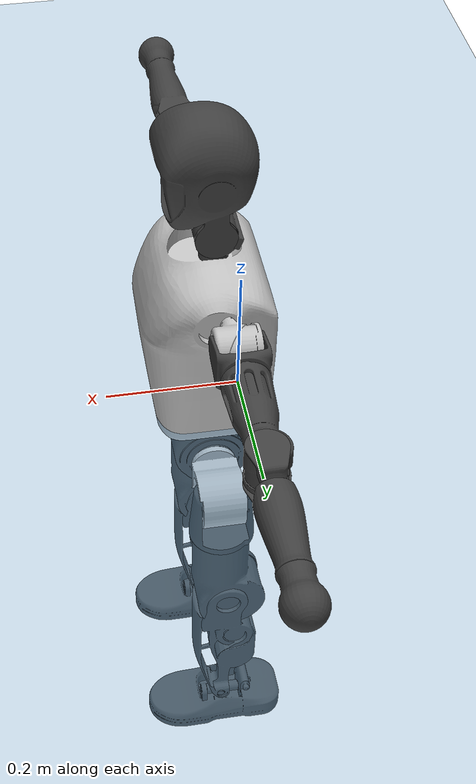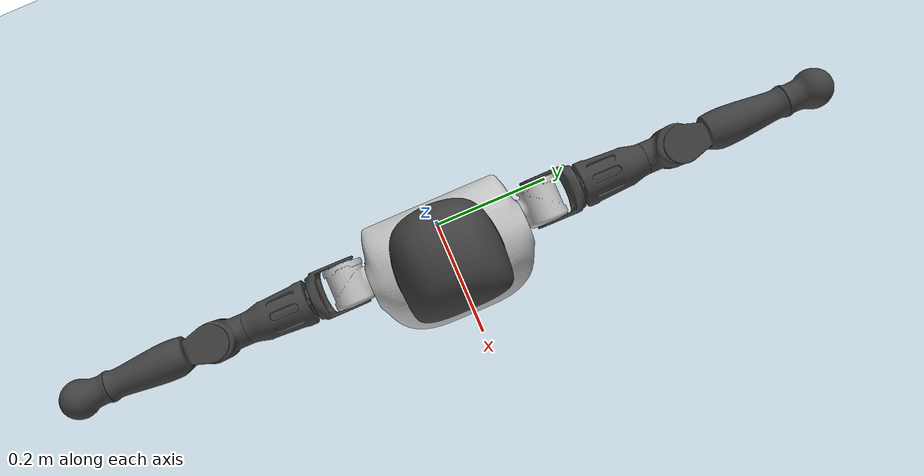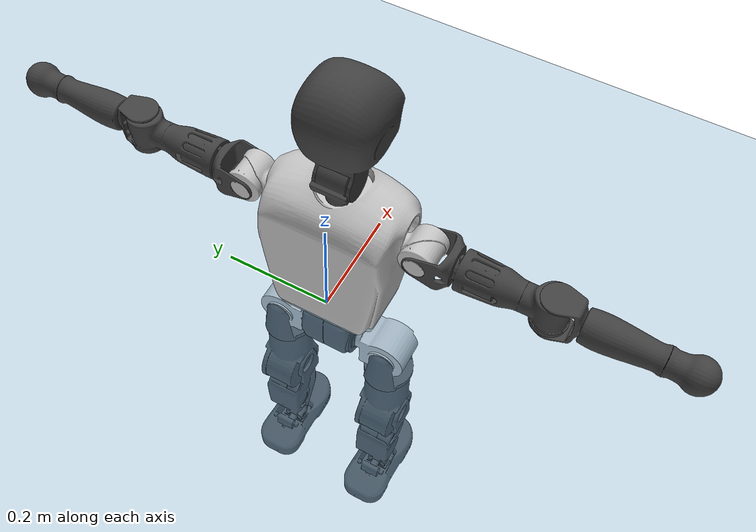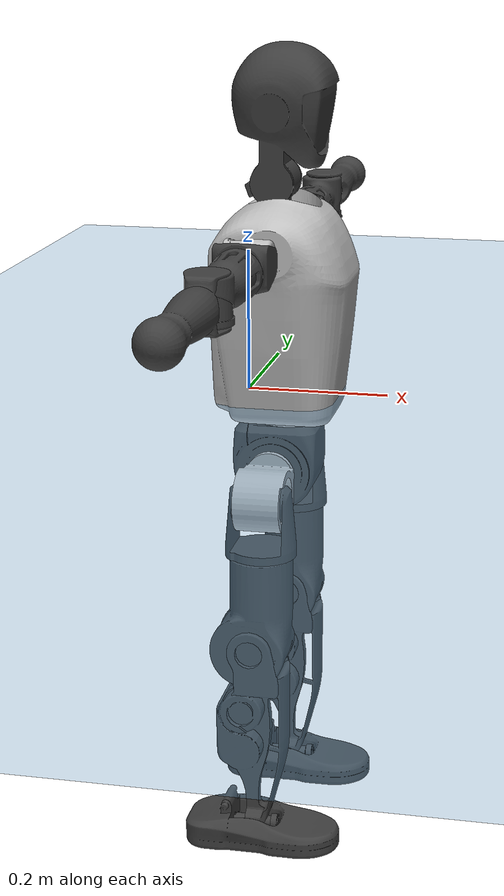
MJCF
<mujoco model="T1">
  <compiler angle="radian" assetdir="assets" balanceinertia="true" inertiafromgeom="false"/>

  <option timestep="0.005" density="1.2" viscosity="2e-05"/>

  <size nkey="1"/>

  <visual>
    <quality shadowsize="8192"/>
    <map shadowclip="0.5"/>
  </visual>

  <default>
    <default class="/">
      <joint armature="0.01" damping="0.01" frictionloss="0.1"/>
      <geom contype="0" conaffinity="0" group="1" solref="-1000 -80"/>
      <site size="0.01 0.005 0.005" group="5"/>
      <general forcelimited="true" biastype="affine" gainprm="25" biasprm="0 -25 -0.6"/>
      <default class="t1">
        <geom rgba="0.25 0.25 0.25 1"/>
        <default class="visual">
          <geom type="mesh" group="2"/>
        </default>
        <default class="collision">
          <geom group="3"/>
        </default>
        <default class="foot">
          <geom size="0.1115 0.05 0.015" type="box" condim="6" group="4" priority="1" solimp="0.015 1 0.015"/>
        </default>
        <default class="reward_collision_sphere">
          <geom group="5" rgba="1 0 0 1"/>
        </default>
      </default>
    </default>
  </default>

  <asset>
    <texture type="skybox" colorspace="auto" name="//unnamed_texture_0" builtin="gradient" rgb1="0.95 0.95 0.95" rgb2="0.95 0.95 0.95" width="100" height="600"/>
    <texture type="2d" colorspace="auto" name="texplane" builtin="checker" rgb1="0.345 0.575 0.748" rgb2="0.345 0.575 0.748" markrgb="1 1 1" width="512" height="512"/>
    <material name="MatPlane" class="/" texture="texplane" texuniform="true" texrepeat="2 2" specular="0.9"/>
    <mesh name="Trunk" class="/" file="Trunk.stl"/>
    <mesh name="H1" class="/" file="H1.stl"/>
    <mesh name="H2" class="/" file="H2.stl"/>
    <mesh name="AL1" class="/" file="AL1.stl"/>
    <mesh name="AL2" class="/" file="AL2.stl"/>
    <mesh name="AL3" class="/" file="AL3.stl"/>
    <mesh name="left_hand_link" class="/" file="left_hand_link.stl"/>
    <mesh name="AR1" class="/" file="AR1.stl"/>
    <mesh name="AR2" class="/" file="AR2.stl"/>
    <mesh name="AR3" class="/" file="AR3.stl"/>
    <mesh name="right_hand_link" class="/" file="right_hand_link.stl"/>
    <mesh name="Waist" class="/" file="Waist.stl"/>
    <mesh name="Hip_Pitch_Left" class="/" file="Hip_Pitch_Left.stl"/>
    <mesh name="Hip_Roll_Left" class="/" file="Hip_Roll_Left.stl"/>
    <mesh name="Hip_Yaw_Left" class="/" file="Hip_Yaw_Left.stl"/>
    <mesh name="Shank_Left" class="/" file="Shank_Left.stl"/>
    <mesh name="Ankle_Cross_Left" class="/" file="Ankle_Cross_Left.stl"/>
    <mesh name="left_foot_link" class="/" file="left_foot_link.stl"/>
    <mesh name="Hip_Pitch_Right" class="/" file="Hip_Pitch_Right.stl"/>
    <mesh name="Hip_Roll_Right" class="/" file="Hip_Roll_Right.stl"/>
    <mesh name="Hip_Yaw_Right" class="/" file="Hip_Yaw_Right.stl"/>
    <mesh name="Shank_Right" class="/" file="Shank_Right.stl"/>
    <mesh name="Ankle_Cross_Right" class="/" file="Ankle_Cross_Right.stl"/>
    <mesh name="right_foot_link" class="/" file="right_foot_link.stl"/>
  </asset>

  <worldbody>
    <geom name="floor" class="/" size="100 100 0.125" type="plane" group="0" material="MatPlane"/>
    <light name="toplight_shadow" class="/" pos="0 0 5" dir="0.0990148 0.0990148 -0.990148" type="directional" ambient="0.04 0.04 0.04" diffuse="0.55 0.55 0.55" specular="0.12 0.12 0.12"/>
    <light name="toplight_fill" class="/" pos="0 0 5" dir="0.0990148 0.0990148 -0.990148" type="directional" castshadow="false" ambient="0.04 0.04 0.04" diffuse="0.3 0.3 0.3" specular="0.08 0.08 0.08"/>
    <body name="trunk" childclass="t1" pos="-0.00276776 -0.00118621 0.00259619" quat="0.999999 -0.000451951 -0.000828128 0.000781459">
      <inertial pos="0.0380244 -0.00328221 0.1051" quat="0.999984 0.00314732 -0.00401329 0.00244601" mass="8.84974" diaginertia="0.015247 0.0945629 0.0499351"/>
      <joint name="//unnamed_joint_0" type="free" armature="0" damping="0" frictionloss="0"/>
      <geom name="//unnamed_geom_1" class="visual" rgba="0.76 0.76 0.76 1" mesh="Trunk"/>
      <geom name="//unnamed_geom_2" class="collision" size="0.0675577 0.0900769 0.135115" pos="0.0415298 0 0.116879" type="box"/>
      <geom name="//unnamed_geom_3" class="reward_collision_sphere" size="0.103588" pos="0.0415298 0 0.0973993"/>
      <geom name="//unnamed_geom_4" class="reward_collision_sphere" size="0.0135115" pos="0.0415298 0.088073 0"/>
      <geom name="//unnamed_geom_5" class="reward_collision_sphere" size="0.0135115" pos="0.0415298 -0.088073 0"/>
      <geom name="//unnamed_geom_6" class="reward_collision_sphere" size="0.0135115" pos="0.0415298 0.110868 0.175319"/>
      <geom name="//unnamed_geom_7" class="reward_collision_sphere" size="0.0135115" pos="0.0415298 -0.110868 0.175319"/>
      <site name="imu" pos="-0.0111815 -0.00114969 -0.00419077" size="0.00900769"/>
      <camera name="track" pos="0 -2.07231 0" quat="0.707107 0.707107 0 0" mode="trackcom"/>
      <camera name="ego_camera" pos="0.0844438 0 0.409077" quat="-0.5 -0.5 0.5 0.5"/>
      <body name="H1" pos="0.0434581 -0.00100899 0.236212" quat="0.999999 0.00048541 0.000957183 -0.000651006">
        <inertial pos="0.00157071 -0.00209162 0.0583078" quat="0.767341 -0.0122694 -0.00374106 0.64111" mass="0.333949" diaginertia="3.99298e-05 0.000279886 0.0001305"/>
        <joint name="AAHead_yaw" pos="0 0 0" axis="-1.161e-06 0.00039843 1" range="-1.61353 1.59305" armature="0.0101823" damping="0.012148" frictionloss="0.0817002"/>
        <geom name="//unnamed_geom_8" class="visual" mesh="H1"/>
        <body name="H2" pos="0.000461666 -0.00133523 0.059895" quat="1 0.000146374 -6.92004e-05 1.10115e-05">
          <inertial pos="0.00468769 0.00192164 0.0963687" quat="0.989529 0.103528 -0.0707261 -0.0715026" mass="0.452396" diaginertia="0.000315114 0.00230188 0.00150129"/>
          <joint name="Head_pitch" pos="0 0 0" axis="-0.00667818 -0.999977 -0.000937844" range="-1.2458 0.402924" armature="0.0096454" damping="0.00653067" frictionloss="0.0777108"/>
          <geom name="//unnamed_geom_9" class="visual" mesh="H2"/>
          <geom name="//unnamed_geom_10" class="collision" size="0.0720616" pos="0.00692163 0 0.107139"/>
          <geom name="//unnamed_geom_11" class="reward_collision_sphere" size="0.0810692" pos="0.0138433 0 0.0973993"/>
        </body>
      </body>
      <body name="AL1" pos="0.0377615 0.108738 0.21479" quat="0.999999 -0.00090086 0.000268347 -0.000944897">
        <inertial pos="5.2081e-05 0.0486867 0.000758218" quat="0.503625 0.496697 -0.504755 0.49485" mass="0.378618" diaginertia="0.000214097 0.00150692 0.000246051"/>
        <joint name="Left_Shoulder_Pitch" pos="0 0 0" axis="0.00170946 0.999996 -0.00208036" stiffness="0.0149651" range="-3.31468 1.16646" armature="0.00791959" damping="0.00484722" frictionloss="0.0935808"/>
        <geom name="//unnamed_geom_12" class="visual" rgba="0.76 0.76 0.76 1" mesh="AL1"/>
        <body name="AL2" pos="-0.00109183 0.0480258 -0.00114208" quat="0.999999 0.000432657 -0.000674782 0.000833504">
          <inertial pos="0.00157935 0.040934 0.000210605" quat="0.487244 0.511544 -0.488077 0.512539" mass="0.117336" diaginertia="6.32895e-05 0.000401287 0.000155394"/>
          <joint name="Left_Shoulder_Roll" pos="0 0 0" axis="-0.999988 -0.0027925 -0.00394929" stiffness="0.0100678" range="-1.57303 1.69371" armature="0.00766194" damping="0.0135472" frictionloss="0.0906607"/>
          <geom name="//unnamed_geom_13" class="visual" mesh="AL2"/>
          <body name="AL3" pos="0.0022951 0.0614313 9.50066e-05" quat="1 -5.45239e-06 -0.000204641 0.000132269">
            <inertial pos="0.000328398 0.0875606 -0.00293105" quat="0.70526 0.708841 -0.00199194 0.0122553" mass="0.704199" diaginertia="0.00195282 0.0149023 0.000534155"/>
            <joint name="Left_Elbow_Pitch" pos="0 0 0" axis="0.00604805 -0.999982 -0.000403736" range="-2.3058 2.28756" armature="0.00893456" damping="0.00883214" frictionloss="0.0969703"/>
            <geom name="//unnamed_geom_14" class="visual" mesh="AL3"/>
            <geom name="//unnamed_geom_15" class="collision" size="0.0270231 0.0675577" pos="0 0.0518076 0" quat="0.707105 0.707108 0 0" type="cylinder"/>
            <geom name="//unnamed_geom_16" class="reward_collision_sphere" size="0.0324277"/>
            <body name="left_hand_link" pos="0.00295591 0.152682 0.00112723" quat="0.999999 0.000556718 0.000654204 0.000560088">
              <inertial pos="-0.000102482 0.112516 -0.000693339" quat="0.709253 0.70495 -0.00254732 -0.00041137" mass="0.246321" diaginertia="0.001338 0.00955942 0.000192624"/>
              <joint name="Left_Elbow_Yaw" pos="0 0 0" axis="-0.0123464 0.00755674 0.999895" stiffness="0.00544067" range="-2.43586 -0.0217458" armature="0.00793758" damping="0.00803563" frictionloss="0.101081"/>
              <geom name="//unnamed_geom_17" class="visual" mesh="left_hand_link"/>
              <geom name="//unnamed_geom_18" class="collision" size="0.0270231 0.0788173" pos="0 0.1347 0" quat="0.707105 0.707108 0 0" type="cylinder"/>
              <geom name="//unnamed_geom_19" class="reward_collision_sphere" size="0.0450385"/>
              <geom name="//unnamed_geom_20" class="reward_collision_sphere" size="0.0315269" pos="0 0.113977 0"/>
              <geom name="//unnamed_geom_21" class="reward_collision_sphere" size="0.0315269" pos="0 0.222773 0"/>
            </body>
          </body>
        </body>
      </body>
      <body name="AR1" pos="0.0385369 -0.106065 0.212454" quat="0.999999 -0.00093946 3.76594e-05 0.000643526">
        <inertial pos="-0.00216019 -0.0467227 -0.000158732" quat="0.504632 0.498871 -0.501298 0.495151" mass="0.387818" diaginertia="0.000218387 0.0015654 0.000267528"/>
        <joint name="Right_Shoulder_Pitch" pos="0 0 0" axis="-2.7559e-05 -1 7.82966e-05" stiffness="0.00726355" range="-1.27406 3.30356" armature="0.00797464" damping="0.0194257" frictionloss="0.0982601"/>
        <geom name="//unnamed_geom_22" class="visual" rgba="0.76 0.76 0.76 1" mesh="AR1"/>
        <body name="AR2" pos="-0.00171946 -0.047161 0.000240051" quat="1 -8.25162e-05 -0.000293915 -9.39944e-05">
          <inertial pos="0.00111529 -0.0390965 0.000666306" quat="0.505362 0.490192 -0.506766 0.497503" mass="0.124389" diaginertia="6.39798e-05 0.000427481 0.000158146"/>
          <joint name="Right_Shoulder_Roll" pos="0 0 0" axis="-1 0.000479955 -0.000584232" range="-1.78738 1.57718" armature="0.00904546" damping="0.00467801" frictionloss="0.092049"/>
          <geom name="//unnamed_geom_23" class="visual" mesh="AR2"/>
          <body name="AR3" pos="0.00153761 -0.0630197 -0.00313181" quat="1 -0.000178549 -3.64996e-05 5.37858e-05">
            <inertial pos="0.0024601 -0.0910164 -0.000980529" quat="0.708759 0.705449 -0.00146691 -0.000630756" mass="0.767171" diaginertia="0.00211967 0.016154 0.000580463"/>
            <joint name="Right_Elbow_Pitch" pos="0 0 0" axis="0.0073782 0.999912 -0.0109977" range="-2.27608 2.25793" armature="0.00888139" damping="0.00856266" frictionloss="0.0901047"/>
            <geom name="//unnamed_geom_24" class="visual" mesh="AR3"/>
            <geom name="//unnamed_geom_25" class="collision" size="0.0270231 0.0675577" pos="0 -0.0518076 0" quat="0.707105 0.707108 0 0" type="cylinder"/>
            <geom name="//unnamed_geom_26" class="reward_collision_sphere" size="0.0324277"/>
            <body name="right_hand_link" pos="-0.00113598 -0.151867 -0.00141795" quat="0.999999 -0.000862373 0.0007253 -0.000157557">
              <inertial pos="-0.00208876 -0.112938 0.00184168" quat="0.70858 0.70562 0.00377206 -0.000656553" mass="0.23391" diaginertia="0.00130216 0.00970297 0.000194963"/>
              <joint name="Right_Elbow_Yaw" pos="0 0 0" axis="-0.00233995 -0.00811273 0.999964" stiffness="0.00368104" range="0.00203985 2.41872" armature="0.00834236" damping="0" frictionloss="0.100904"/>
              <geom name="//unnamed_geom_27" class="visual" mesh="right_hand_link"/>
              <geom name="//unnamed_geom_28" class="collision" size="0.0270231 0.0788173" pos="0 -0.1347 0" quat="0.707105 0.707108 0 0" type="cylinder"/>
              <geom name="//unnamed_geom_29" class="reward_collision_sphere" size="0.0450385"/>
              <geom name="//unnamed_geom_30" class="reward_collision_sphere" size="0.0315269" pos="0 -0.113977 0"/>
              <geom name="//unnamed_geom_31" class="reward_collision_sphere" size="0.0315269" pos="0 -0.222773 0"/>
            </body>
          </body>
        </body>
      </body>
      <body name="Waist" pos="0.0469132 0.00133728 -0.111117" quat="0.999999 0.000267743 0.000775571 0.000954007">
        <inertial pos="0.00376628 -0.00171502 0.00982596" quat="0.982474 -0.00119085 -0.185851 0.0142179" mass="1.82789" diaginertia="0.000837969 0.00630847 0.00415728"/>
        <joint name="Waist" pos="0 0 0" axis="0.00270223 -0.00233682 0.999994" stiffness="0.0132671" range="-1.56342 1.57571" armature="0.0101992" damping="0.00887515" frictionloss="0.0865499"/>
        <geom name="//unnamed_geom_32" class="visual" mesh="Waist"/>
        <body name="Hip_Pitch_Left" pos="0.00146921 0.109469 -0.00303607" quat="0.999999 -0.000570941 -0.00134248 0.000764195">
          <inertial pos="-0.000423473 -0.00502988 -0.0178608" quat="0.975418 0.219544 0.0186175 0.00377262" mass="0.760642" diaginertia="0.000283292 0.00171436 0.00113043"/>
          <joint name="Left_Hip_Pitch" pos="0 0 0" axis="-0.0164203 0.999838 -0.00737977" stiffness="0.0021" range="-1.79207 1.5721" armature="0.00900979" damping="0.00835023" frictionloss="0.0838216"/>
          <geom name="//unnamed_geom_33" class="visual" rgba="0.76 0.76 0.76 1" mesh="Hip_Pitch_Left"/>
          <body name="Hip_Roll_Left" pos="-0.00123671 0.00212632 -0.0197987" quat="0.999999 -0.000643782 -0.000824706 0.000760366">
            <inertial pos="-0.00125886 0.00101054 -0.0514449" quat="0.708851 -0.0104802 0.00148793 0.705279" mass="0.297884" diaginertia="0.000280498 0.00182813 0.000462173"/>
            <joint name="Left_Hip_Roll" pos="0 0 0" axis="-0.999928 -0.00379699 0.0113669" range="-1.54671 0.25632" armature="0.00859163" damping="0.016177" frictionloss="0.0818403"/>
            <geom name="//unnamed_geom_34" class="visual" mesh="Hip_Roll_Left"/>
            <geom name="//unnamed_geom_35" class="reward_collision_sphere" size="0.0495423"/>
            <body name="Hip_Yaw_Left" pos="-0.00205471 0.000916653 -0.0788434" quat="1 -6.47375e-06 -8.32092e-05 0.000809601">
              <inertial pos="-0.00387664 0.00027313 -0.0877288" quat="0.695219 -0.0361374 -0.0308213 0.717227" mass="1.50662" diaginertia="0.00392781 0.0296714 0.00212168"/>
              <joint name="Left_Hip_Yaw" pos="0 0 0" axis="-0.000298501 3.98794e-05 -1" range="-0.951825 0.978433" armature="0.00892392" damping="0.0169438" frictionloss="0.0857001"/>
              <geom name="//unnamed_geom_36" class="visual" mesh="Hip_Yaw_Left"/>
              <geom name="//unnamed_geom_37" class="collision" size="0.0450385 0.0720616" type="cylinder"/>
              <body name="Shank_Left" pos="-0.00696342 -0.00024898 -0.131432" quat="1 -5.89263e-06 2.70823e-05 -1.66635e-05">
                <inertial pos="-0.00227503 0.00112993 -0.121463" quat="0.997328 0.000755015 -0.0260902 0.0682305" mass="1.27403" diaginertia="0.00545424 0.0413083 0.00161529"/>
                <joint name="Left_Knee_Pitch" pos="0 0 0" axis="0.00372508 0.99995 0.00924875" range="0.0508981 2.34981" armature="0.0102503" damping="0.0228456" frictionloss="0.0805731"/>
                <geom name="//unnamed_geom_38" class="visual" mesh="Shank_Left"/>
                <geom name="//unnamed_geom_39" class="collision" size="0.0450385 0.0675577" pos="0 0 -0.116879" type="cylinder"/>
                <geom name="//unnamed_geom_40" class="reward_collision_sphere" size="0.05855"/>
                <body name="Ankle_Cross_Left" pos="0.00296832 0.00163414 -0.274904" quat="1 -0.000107415 3.42858e-06 -0.000232373">
                  <inertial pos="-0.00199467 0.000335715 -0.00534545" quat="0.448331 0.550139 0.546415 0.444722" mass="0.0532673" diaginertia="4.79225e-06 3.18206e-05 1.00951e-05"/>
                  <joint name="Left_Ankle_Pitch" pos="0 0 0" axis="0.00404428 0.999992 -0.000644954" stiffness="0.00680268" range="-0.925878 0.305188" armature="0.00903605" damping="0.0151074" frictionloss="0.0778437"/>
                  <geom name="//unnamed_geom_41" class="visual" mesh="Ankle_Cross_Left"/>
                  <body name="left_foot_link" pos="-0.000135655 0.00223755 -0.0121642" quat="1 0.000274527 -0.000412364 -0.000228548">
                    <inertial pos="-0.00029299 -0.00115165 -0.0115946" quat="0.00204559 0.623684 0.0032517 0.781668" mass="0.51807" diaginertia="0.000441344 0.00295416 0.0019475"/>
                    <joint name="Left_Ankle_Roll" pos="0 0 0" axis="-0.99989 -0.00426166 -0.0141812" range="-0.423649 0.389503" armature="0.00909404" damping="6.57196e-05" frictionloss="0.102362"/>
                    <geom name="//unnamed_geom_42" class="visual" mesh="left_foot_link"/>
                    <geom name="left_foot" class="foot" size="0.104063 0.0406422 0.0144451" pos="0.00692163 0 -0.0146099"/>
                    <geom name="//unnamed_geom_44" class="reward_collision_sphere" size="0.04684" pos="0.00692163 0 -0.0146099"/>
                    <geom name="//unnamed_geom_45" class="reward_collision_sphere" size="0.0270231" pos="0.0657554 -0.0238315 -0.0146099"/>
                    <geom name="//unnamed_geom_46" class="reward_collision_sphere" size="0.0270231" pos="-0.0484514 -0.0238315 -0.0146099"/>
                    <site name="left_foot" class="foot" pos="0.00692163 0 -0.0146099" size="0.00900769"/>
                  </body>
                </body>
              </body>
            </body>
          </body>
        </body>
        <body name="Hip_Pitch_Right" pos="-0.00164885 -0.109507 -0.00177864" quat="0.999999 -0.000488144 -0.000478972 0.000957101">
          <inertial pos="-0.00218911 0.00530289 -0.0164333" quat="0.973462 -0.228484 0.0125504 -0.00310122" mass="0.740305" diaginertia="0.000296306 0.00181348 0.0011027"/>
          <joint name="Right_Hip_Pitch" pos="0 0 0" axis="0.0107486 -0.999912 0.00780352" range="-1.57479 1.80298" armature="0.00913381" damping="0.000388594" frictionloss="0.09794"/>
          <geom name="//unnamed_geom_47" class="visual" rgba="0.76 0.76 0.76 1" mesh="Hip_Pitch_Right"/>
          <body name="Hip_Roll_Right" pos="0.000409331 -0.00240307 -0.0219584" quat="1 2.22252e-05 0.000319147 3.32168e-05">
            <inertial pos="0.000327529 -0.00277433 -0.0535775" quat="0.704745 0.000841595 0.00481719 0.709444" mass="0.28621" diaginertia="0.000280262 0.00182983 0.000440129"/>
            <joint name="Right_Hip_Roll" pos="0 0 0" axis="-0.999994 -0.00345364 -0.000574434" stiffness="0.00373544" range="-0.248332 1.53773" armature="0.0102862" damping="0.0144687" frictionloss="0.0782378"/>
            <geom name="//unnamed_geom_48" class="visual" mesh="Hip_Roll_Right"/>
            <geom name="//unnamed_geom_49" class="reward_collision_sphere" size="0.0495423"/>
            <body name="Hip_Yaw_Right" pos="-0.00202742 -0.000806664 -0.0802398" quat="1 1.15347e-05 3.87198e-06 4.93918e-06">
              <inertial pos="-0.0049537 -0.000690354 -0.0877193" quat="0.71843 -0.0308999 -0.0388889 0.693823" mass="1.56316" diaginertia="0.00402489 0.0306608 0.00225491"/>
              <joint name="Right_Hip_Yaw" pos="0 0 0" axis="0.00227057 0.000142884 -0.999997" range="-1.0288 1.00284" armature="0.00947958" damping="0" frictionloss="0.0829051"/>
              <geom name="//unnamed_geom_50" class="visual" mesh="Hip_Yaw_Right"/>
              <geom name="//unnamed_geom_51" class="collision" size="0.0450385 0.0720616" type="cylinder"/>
              <body name="Shank_Right" pos="-0.0100113 -0.00134547 -0.13345" quat="1 8.26811e-05 7.14581e-05 -4.12732e-05">
                <inertial pos="-0.00512255 -0.00220387 -0.116848" quat="0.999217 0.00217429 -0.0175254 -0.0354159" mass="1.29145" diaginertia="0.00537096 0.0397814 0.00164665"/>
                <joint name="Right_Knee_Pitch" pos="0 0 0" axis="-0.00503035 -0.999974 -0.00520268" range="-2.34307 -0.00250585" armature="0.0100454" damping="0.0153525" frictionloss="0.102311"/>
                <geom name="//unnamed_geom_52" class="visual" mesh="Shank_Right"/>
                <geom name="//unnamed_geom_53" class="collision" size="0.0450385 0.0675577" pos="0 0 -0.116879" type="cylinder"/>
                <geom name="//unnamed_geom_54" class="reward_collision_sphere" size="0.05855"/>
                <body name="Ankle_Cross_Right" pos="0.00273152 0.00215037 -0.272602" quat="0.999999 -0.00116315 0.000102163 -0.000344974">
                  <inertial pos="5.51216e-05 0.00254524 -0.00755918" quat="0.44399 0.559562 0.540986 0.443957" mass="0.0522713" diaginertia="4.69039e-06 3.03107e-05 9.61445e-06"/>
                  <joint name="Right_Ankle_Pitch" pos="0 0 0" axis="-0.00542536 -0.999962 -0.00686607" range="-0.404623 0.856208" armature="0.00990221" damping="0.0161304" frictionloss="0.101494"/>
                  <geom name="//unnamed_geom_55" class="visual" mesh="Ankle_Cross_Right"/>
                  <body name="right_foot_link" pos="-0.00128673 -0.00177127 -0.0102584" quat="1 1.0848e-05 0.000267954 0.000268409">
                    <inertial pos="-0.00105554 0.000576667 -0.00671827" quat="-0.0048137 0.622937 -0.00470767 0.782243" mass="0.500206" diaginertia="0.000419147 0.00286348 0.0018529"/>
                    <joint name="Right_Ankle_Roll" pos="0 0 0" axis="-0.999987 -0.00423969 -0.00279682" range="-0.439238 0.384933" armature="0.0102966" damping="0.0150019" frictionloss="0.0915968"/>
                    <geom name="//unnamed_geom_56" class="visual" mesh="right_foot_link"/>
                    <geom name="right_foot" class="foot" size="0.102176 0.0397427 0.0124407" pos="0.00692163 0 -0.0146099"/>
                    <geom name="//unnamed_geom_58" class="reward_collision_sphere" size="0.0360308"/>
                    <geom name="//unnamed_geom_59" class="reward_collision_sphere" size="0.0270231" pos="0.00692163 0 -0.0146099"/>
                    <geom name="//unnamed_geom_60" class="reward_collision_sphere" size="0.0270231" pos="0.0657554 0.0238315 -0.0146099"/>
                    <geom name="//unnamed_geom_61" class="reward_collision_sphere" size="0.0270231" pos="-0.0484514 0.0238315 -0.0146099"/>
                    <site name="right_foot" class="foot" pos="0.00692163 0 -0.0146099" size="0.00900769"/>
                  </body>
                </body>
              </body>
            </body>
          </body>
        </body>
      </body>
    </body>
  </worldbody>

  <contact>
    <pair class="/" geom1="floor" geom2="left_foot" name="//unnamed_contact_0"/>
    <pair class="/" geom1="floor" geom2="right_foot" name="//unnamed_contact_1"/>
  </contact>

  <actuator>
    <general name="AAHead_yaw" class="/" joint="AAHead_yaw" forcerange="-6.22351 6.22351" gainprm="21.1631" biasprm="0 -21.1631 -0.54775"/>
    <general name="Head_pitch" class="/" joint="Head_pitch" forcerange="-6.95318 6.95318" gainprm="21.1631" biasprm="0 -21.1631 -0.54775"/>
    <general name="Left_Shoulder_Pitch" class="/" joint="Left_Shoulder_Pitch" forcerange="-15.6443 15.6443" gainprm="21.1631" biasprm="0 -21.1631 -0.54775"/>
    <general name="Left_Shoulder_Roll" class="/" joint="Left_Shoulder_Roll" forcerange="-17.7389 17.7389" gainprm="21.1631" biasprm="0 -21.1631 -0.54775"/>
    <general name="Left_Elbow_Pitch" class="/" joint="Left_Elbow_Pitch" forcerange="-17.0673 17.0673" gainprm="21.1631" biasprm="0 -21.1631 -0.54775"/>
    <general name="Left_Elbow_Yaw" class="/" joint="Left_Elbow_Yaw" forcerange="-15.4995 15.4995" gainprm="21.1631" biasprm="0 -21.1631 -0.54775"/>
    <general name="Right_Shoulder_Pitch" class="/" joint="Right_Shoulder_Pitch" forcerange="-16.1285 16.1285" gainprm="21.1631" biasprm="0 -21.1631 -0.54775"/>
    <general name="Right_Shoulder_Roll" class="/" joint="Right_Shoulder_Roll" forcerange="-17.0361 17.0361" gainprm="21.1631" biasprm="0 -21.1631 -0.54775"/>
    <general name="Right_Elbow_Pitch" class="/" joint="Right_Elbow_Pitch" forcerange="-17.6392 17.6392" gainprm="21.1631" biasprm="0 -21.1631 -0.54775"/>
    <general name="Right_Elbow_Yaw" class="/" joint="Right_Elbow_Yaw" forcerange="-15.2192 15.2192" gainprm="21.1631" biasprm="0 -21.1631 -0.54775"/>
    <general name="Waist" class="/" joint="Waist" forcerange="-27.1405 27.1405" gainprm="21.1631" biasprm="0 -21.1631 -0.54775"/>
    <general name="Left_Hip_Pitch" class="/" joint="Left_Hip_Pitch" forcerange="-44.1294 44.1294" gainprm="21.1631" biasprm="0 -21.1631 -0.54775"/>
    <general name="Left_Hip_Roll" class="/" joint="Left_Hip_Roll" forcerange="-26.1382 26.1382" gainprm="21.1631" biasprm="0 -21.1631 -0.54775"/>
    <general name="Left_Hip_Yaw" class="/" joint="Left_Hip_Yaw" forcerange="-29.7177 29.7177" gainprm="21.1631" biasprm="0 -21.1631 -0.54775"/>
    <general name="Left_Knee_Pitch" class="/" joint="Left_Knee_Pitch" forcerange="-53.9427 53.9427" gainprm="21.1631" biasprm="0 -21.1631 -0.54775"/>
    <general name="Left_Ankle_Pitch" class="/" joint="Left_Ankle_Pitch" forcerange="-19.5975 19.5975" gainprm="21.1631" biasprm="0 -21.1631 -0.54775"/>
    <general name="Left_Ankle_Roll" class="/" joint="Left_Ankle_Roll" forcerange="-13.4289 13.4289" gainprm="21.1631" biasprm="0 -21.1631 -0.54775"/>
    <general name="Right_Hip_Pitch" class="/" joint="Right_Hip_Pitch" forcerange="-41.3311 41.3311" gainprm="21.1631" biasprm="0 -21.1631 -0.54775"/>
    <general name="Right_Hip_Roll" class="/" joint="Right_Hip_Roll" forcerange="-27.0678 27.0678" gainprm="21.1631" biasprm="0 -21.1631 -0.54775"/>
    <general name="Right_Hip_Yaw" class="/" joint="Right_Hip_Yaw" forcerange="-26.1333 26.1333" gainprm="21.1631" biasprm="0 -21.1631 -0.54775"/>
    <general name="Right_Knee_Pitch" class="/" joint="Right_Knee_Pitch" forcerange="-48.4684 48.4684" gainprm="21.1631" biasprm="0 -21.1631 -0.54775"/>
    <general name="Right_Ankle_Pitch" class="/" joint="Right_Ankle_Pitch" forcerange="-17.0738 17.0738" gainprm="21.1631" biasprm="0 -21.1631 -0.54775"/>
    <general name="Right_Ankle_Roll" class="/" joint="Right_Ankle_Roll" forcerange="-14.7251 14.7251" gainprm="21.1631" biasprm="0 -21.1631 -0.54775"/>
  </actuator>

  <sensor>
    <gyro site="imu" name="imu_angular_velocity"/>
    <velocimeter site="imu" name="imu_linear_velocity"/>
    <framelinvel objtype="site" objname="left_foot" name="left_foot_global_linear_velocity"/>
    <framelinvel objtype="site" objname="right_foot" name="right_foot_global_linear_velocity"/>
  </sensor>

  <keyframe>
    <key name="home" qpos="0 0 0.6385 1 0 0 0 0 0 0 1.4 0 -0.4 0 -1.4 0 0.4 0 -0.4 0 0 0.8 -0.4 0 0.4 0 0 -0.8 0.4 0"/>
  </keyframe>
</mujoco>
